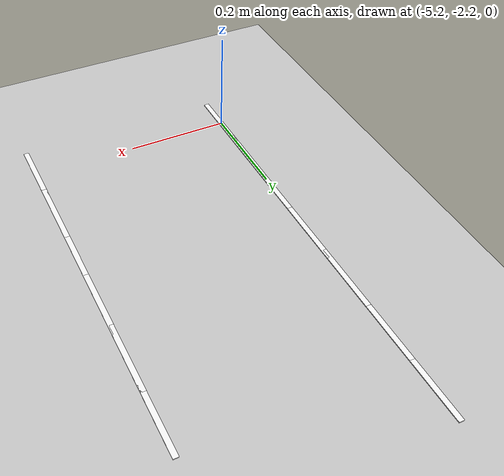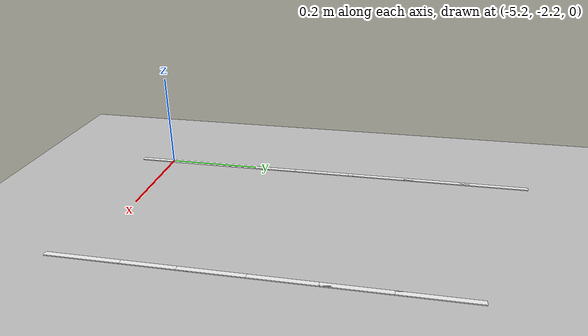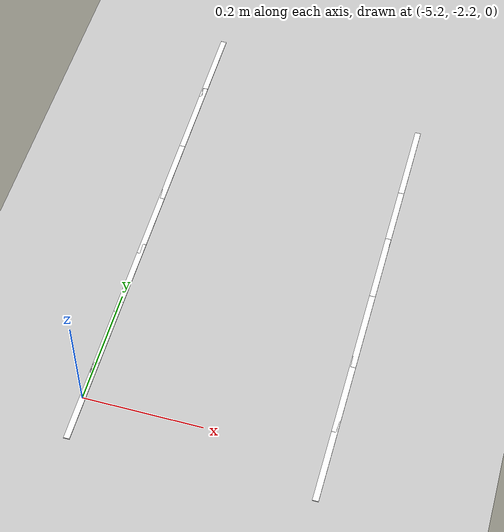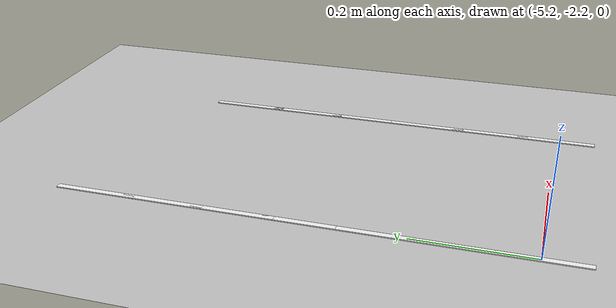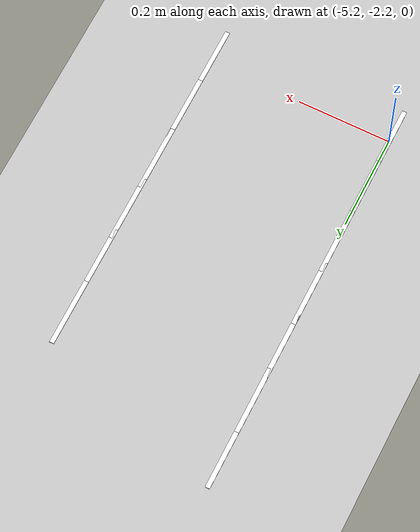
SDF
<sdf version="1.7">
 <world name="default">
  <model name="ground_plane">
   <static>1</static>
   <link name="link">
    <collision name="collision">
     <geometry><plane><normal>0 0 1</normal><size>100 100</size></plane></geometry>
     <surface>
      <contact><collide_bitmask>65535</collide_bitmask></contact>
      <friction><ode><mu>100</mu><mu2>50</mu2></ode></friction>
     </surface>
    </collision>
    <visual name="visual">
     <cast_shadows>0</cast_shadows>
     <geometry><plane><normal>0 0 1</normal><size>100 100</size></plane></geometry>
     <material>
      <script><uri>file://media/materials/scripts/gazebo.material</uri><name>Gazebo/Grey</name></script>
     </material>
    </visual>
   </link>
  </model>
  <model name="lane_line_right_336">
   <static>1</static>
   <link name="link">
    <pose>0 0 -0.004 0 -0 0</pose>
    <visual name="visual">
     <geometry><box><size>0.1424 0.01 0.01</size></box></geometry>
     <material><ambient>1 1 1 1</ambient><diffuse>1 1 1 1</diffuse></material>
    </visual>
    <collision name="collision"><geometry><box><size>0.1424 0.01 0.01</size></box></geometry></collision>
   </link>
   <pose>-5.2 -1.46939 0 0 0 -1.5708</pose>
  </model>
  <model name="lane_line_left_337">
   <static>1</static>
   <link name="link">
    <pose>0 0 -0.004 0 -0 0</pose>
    <visual name="visual">
     <geometry><box><size>0.1424 0.01 0.01</size></box></geometry>
     <material><ambient>1 1 1 1</ambient><diffuse>1 1 1 1</diffuse></material>
    </visual>
    <collision name="collision"><geometry><box><size>0.1424 0.01 0.01</size></box></geometry></collision>
   </link>
   <pose>-4.8 -1.59184 0 0 0 -1.5708</pose>
  </model>
  <model name="lane_line_right_337">
   <static>1</static>
   <link name="link">
    <pose>0 0 -0.004 0 -0 0</pose>
    <visual name="visual">
     <geometry><box><size>0.1424 0.01 0.01</size></box></geometry>
     <material><ambient>1 1 1 1</ambient><diffuse>1 1 1 1</diffuse></material>
    </visual>
    <collision name="collision"><geometry><box><size>0.1424 0.01 0.01</size></box></geometry></collision>
   </link>
   <pose>-5.2 -1.59184 0 0 0 -1.5708</pose>
  </model>
  <model name="lane_line_left_338">
   <static>1</static>
   <link name="link">
    <pose>0 0 -0.004 0 -0 0</pose>
    <visual name="visual">
     <geometry><box><size>0.1424 0.01 0.01</size></box></geometry>
     <material><ambient>1 1 1 1</ambient><diffuse>1 1 1 1</diffuse></material>
    </visual>
    <collision name="collision"><geometry><box><size>0.1424 0.01 0.01</size></box></geometry></collision>
   </link>
   <pose>-4.8 -1.71429 0 0 0 -1.5708</pose>
  </model>
  <model name="lane_line_right_338">
   <static>1</static>
   <link name="link">
    <pose>0 0 -0.004 0 -0 0</pose>
    <visual name="visual">
     <geometry><box><size>0.1424 0.01 0.01</size></box></geometry>
     <material><ambient>1 1 1 1</ambient><diffuse>1 1 1 1</diffuse></material>
    </visual>
    <collision name="collision"><geometry><box><size>0.1424 0.01 0.01</size></box></geometry></collision>
   </link>
   <pose>-5.2 -1.71429 0 0 0 -1.5708</pose>
  </model>
  <model name="lane_line_left_339">
   <static>1</static>
   <link name="link">
    <pose>0 0 -0.004 0 -0 0</pose>
    <visual name="visual">
     <geometry><box><size>0.1424 0.01 0.01</size></box></geometry>
     <material><ambient>1 1 1 1</ambient><diffuse>1 1 1 1</diffuse></material>
    </visual>
    <collision name="collision"><geometry><box><size>0.1424 0.01 0.01</size></box></geometry></collision>
   </link>
   <pose>-4.8 -1.83673 0 0 0 -1.5708</pose>
  </model>
  <model name="lane_line_right_339">
   <static>1</static>
   <link name="link">
    <pose>0 0 -0.004 0 -0 0</pose>
    <visual name="visual">
     <geometry><box><size>0.1424 0.01 0.01</size></box></geometry>
     <material><ambient>1 1 1 1</ambient><diffuse>1 1 1 1</diffuse></material>
    </visual>
    <collision name="collision"><geometry><box><size>0.1424 0.01 0.01</size></box></geometry></collision>
   </link>
   <pose>-5.2 -1.83673 0 0 0 -1.5708</pose>
  </model>
  <model name="lane_line_left_340">
   <static>1</static>
   <link name="link">
    <pose>0 0 -0.004 0 -0 0</pose>
    <visual name="visual">
     <geometry><box><size>0.1424 0.01 0.01</size></box></geometry>
     <material><ambient>1 1 1 1</ambient><diffuse>1 1 1 1</diffuse></material>
    </visual>
    <collision name="collision"><geometry><box><size>0.1424 0.01 0.01</size></box></geometry></collision>
   </link>
   <pose>-4.8 -1.95918 0 0 0 -1.5708</pose>
  </model>
  <model name="lane_line_right_340">
   <static>1</static>
   <link name="link">
    <pose>0 0 -0.004 0 -0 0</pose>
    <visual name="visual">
     <geometry><box><size>0.1424 0.01 0.01</size></box></geometry>
     <material><ambient>1 1 1 1</ambient><diffuse>1 1 1 1</diffuse></material>
    </visual>
    <collision name="collision"><geometry><box><size>0.1424 0.01 0.01</size></box></geometry></collision>
   </link>
   <pose>-5.2 -1.95918 0 0 0 -1.5708</pose>
  </model>
  <model name="lane_line_left_341">
   <static>1</static>
   <link name="link">
    <pose>0 0 -0.004 0 -0 0</pose>
    <visual name="visual">
     <geometry><box><size>0.1424 0.01 0.01</size></box></geometry>
     <material><ambient>1 1 1 1</ambient><diffuse>1 1 1 1</diffuse></material>
    </visual>
    <collision name="collision"><geometry><box><size>0.1424 0.01 0.01</size></box></geometry></collision>
   </link>
   <pose>-4.8 -2.08163 0 0 0 -1.5708</pose>
  </model>
  <model name="lane_line_right_341">
   <static>1</static>
   <link name="link">
    <pose>0 0 -0.004 0 -0 0</pose>
    <visual name="visual">
     <geometry><box><size>0.1424 0.01 0.01</size></box></geometry>
     <material><ambient>1 1 1 1</ambient><diffuse>1 1 1 1</diffuse></material>
    </visual>
    <collision name="collision"><geometry><box><size>0.1424 0.01 0.01</size></box></geometry></collision>
   </link>
   <pose>-5.2 -2.08163 0 0 0 -1.5708</pose>
  </model>
  <model name="lane_line_left_342">
   <static>1</static>
   <link name="link">
    <pose>0 0 -0.004 0 -0 0</pose>
    <visual name="visual">
     <geometry><box><size>0.1424 0.01 0.01</size></box></geometry>
     <material><ambient>1 1 1 1</ambient><diffuse>1 1 1 1</diffuse></material>
    </visual>
    <collision name="collision"><geometry><box><size>0.1424 0.01 0.01</size></box></geometry></collision>
   </link>
   <pose>-4.8 -2.20408 0 0 0 -1.5708</pose>
  </model>
  <model name="lane_line_right_342">
   <static>1</static>
   <link name="link">
    <pose>0 0 -0.004 0 -0 0</pose>
    <visual name="visual">
     <geometry><box><size>0.1424 0.01 0.01</size></box></geometry>
     <material><ambient>1 1 1 1</ambient><diffuse>1 1 1 1</diffuse></material>
    </visual>
    <collision name="collision"><geometry><box><size>0.1424 0.01 0.01</size></box></geometry></collision>
   </link>
   <pose>-5.2 -2.20408 0 0 0 -1.5708</pose>
  </model>
 </world>
</sdf>
